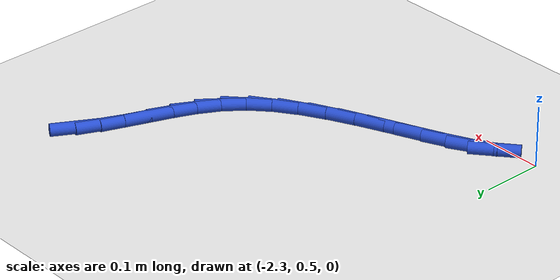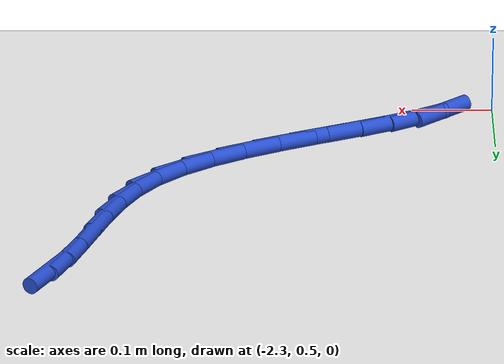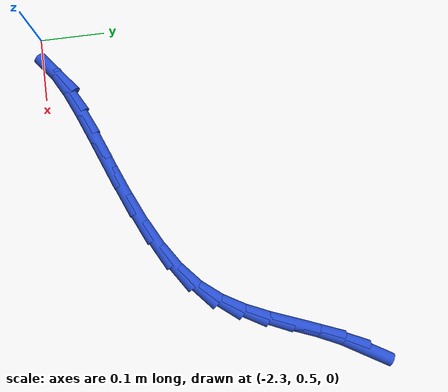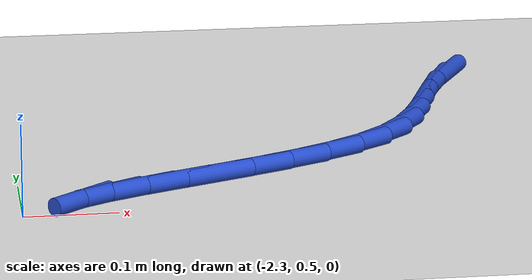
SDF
<sdf version="1.6">
 <world name="default">
  <model name="ground_plane">
   <static>1</static>
   <link name="link">
    <collision name="collision">
     <geometry><plane><normal>0 0 1</normal><size>100 100</size></plane></geometry>
     <surface><friction><ode><mu>100</mu><mu2>50</mu2></ode></friction></surface>
    </collision>
    <visual name="visual">
     <cast_shadows>0</cast_shadows>
     <geometry><plane><normal>0 0 1</normal><size>100 100</size></plane></geometry>
     <material>
      <script><uri>file://media/materials/scripts/gazebo.material</uri><name>Gazebo/WhiteGlow</name></script>
     </material>
    </visual>
   </link>
  </model>
  <model name="line">
   <link name="link_66">
    <pose>-1.7647057322354762 0.9405560377948695 0.01 0 1.57 1.0456950409945203</pose>
    <collision name="collision">
     <geometry><cylinder><radius>0.01</radius><length>0.08</length></cylinder></geometry>
    </collision>
    <visual name="visual">
     <material>
      <script><name>Gazebo/Blue</name><uri>file://media/materials/scripts/gazebo.material</uri></script>
     </material>
     <geometry><cylinder><radius>0.01</radius><length>0.08</length></cylinder></geometry>
    </visual>
   </link>
   <link name="link_67">
    <pose>-1.783759973115139 0.9076673440950094 0.01 0 1.57 1.1435086841225959</pose>
    <collision name="collision">
     <geometry><cylinder><radius>0.01</radius><length>0.08</length></cylinder></geometry>
    </collision>
    <visual name="visual">
     <material>
      <script><name>Gazebo/Blue</name><uri>file://media/materials/scripts/gazebo.material</uri></script>
     </material>
     <geometry><cylinder><radius>0.01</radius><length>0.08</length></cylinder></geometry>
    </visual>
   </link>
   <link name="link_68">
    <pose>-1.799448794484213 0.873212334070367 0.01 0 1.57 1.2024026393650187</pose>
    <collision name="collision">
     <geometry><cylinder><radius>0.01</radius><length>0.08</length></cylinder></geometry>
    </collision>
    <visual name="visual">
     <material>
      <script><name>Gazebo/Blue</name><uri>file://media/materials/scripts/gazebo.material</uri></script>
     </material>
     <geometry><cylinder><radius>0.01</radius><length>0.08</length></cylinder></geometry>
    </visual>
   </link>
   <link name="link_69">
    <pose>-1.8131085326556455 0.8378259100381336 0.01 0 1.57 1.207169072288135</pose>
    <collision name="collision">
     <geometry><cylinder><radius>0.01</radius><length>0.08</length></cylinder></geometry>
    </collision>
    <visual name="visual">
     <material>
      <script><name>Gazebo/Blue</name><uri>file://media/materials/scripts/gazebo.material</uri></script>
     </material>
     <geometry><cylinder><radius>0.01</radius><length>0.08</length></cylinder></geometry>
    </visual>
   </link>
   <link name="link_70">
    <pose>-1.8266172507014728 0.8023280018238768 0.01 0 1.57 1.1579852641284027</pose>
    <collision name="collision">
     <geometry><cylinder><radius>0.01</radius><length>0.08</length></cylinder></geometry>
    </collision>
    <visual name="visual">
     <material>
      <script><name>Gazebo/Blue</name><uri>file://media/materials/scripts/gazebo.material</uri></script>
     </material>
     <geometry><cylinder><radius>0.01</radius><length>0.08</length></cylinder></geometry>
    </visual>
   </link>
   <link name="link_71">
    <pose>-1.8418540876320169 0.7675389067413427 0.01 0 1.57 1.0553208269981007</pose>
    <collision name="collision">
     <geometry><cylinder><radius>0.01</radius><length>0.08</length></cylinder></geometry>
    </collision>
    <visual name="visual">
     <material>
      <script><name>Gazebo/Blue</name><uri>file://media/materials/scripts/gazebo.material</uri></script>
     </material>
     <geometry><cylinder><radius>0.01</radius><length>0.08</length></cylinder></geometry>
    </visual>
   </link>
   <link name="link_72">
    <pose>-1.8606981824575983 0.7342789221042764 0.01 0 1.57 0.9039553692297427</pose>
    <collision name="collision">
     <geometry><cylinder><radius>0.01</radius><length>0.08</length></cylinder></geometry>
    </collision>
    <visual name="visual">
     <material>
      <script><name>Gazebo/Blue</name><uri>file://media/materials/scripts/gazebo.material</uri></script>
     </material>
     <geometry><cylinder><radius>0.01</radius><length>0.08</length></cylinder></geometry>
    </visual>
   </link>
   <link name="link_73">
    <pose>-1.8850286741885383 0.703368345226424 0.01 0 1.57 0.7266078050478999</pose>
    <collision name="collision">
     <geometry><cylinder><radius>0.01</radius><length>0.08</length></cylinder></geometry>
    </collision>
    <visual name="visual">
     <material>
      <script><name>Gazebo/Blue</name><uri>file://media/materials/scripts/gazebo.material</uri></script>
     </material>
     <geometry><cylinder><radius>0.01</radius><length>0.08</length></cylinder></geometry>
    </visual>
   </link>
   <link name="link_74">
    <pose>-1.9163733441163313 0.6755083541652737 0.01 0 1.57 0.5861550663383689</pose>
    <collision name="collision">
     <geometry><cylinder><radius>0.01</radius><length>0.08</length></cylinder></geometry>
    </collision>
    <visual name="visual">
     <material>
      <script><name>Gazebo/Blue</name><uri>file://media/materials/scripts/gazebo.material</uri></script>
     </material>
     <geometry><cylinder><radius>0.01</radius><length>0.08</length></cylinder></geometry>
    </visual>
   </link>
   <link name="link_75">
    <pose>-1.953890599444236 0.6505968485413716 0.01 0 1.57 0.4911992792978934</pose>
    <collision name="collision">
     <geometry><cylinder><radius>0.01</radius><length>0.08</length></cylinder></geometry>
    </collision>
    <visual name="visual">
     <material>
      <script><name>Gazebo/Blue</name><uri>file://media/materials/scripts/gazebo.material</uri></script>
     </material>
     <geometry><cylinder><radius>0.01</radius><length>0.08</length></cylinder></geometry>
    </visual>
   </link>
   <link name="link_76">
    <pose>-1.9957597628150485 0.6281997932591431 0.01 0 1.57 0.42918376798071106</pose>
    <collision name="collision">
     <geometry><cylinder><radius>0.01</radius><length>0.08</length></cylinder></geometry>
    </collision>
    <visual name="visual">
     <material>
      <script><name>Gazebo/Blue</name><uri>file://media/materials/scripts/gazebo.material</uri></script>
     </material>
     <geometry><cylinder><radius>0.01</radius><length>0.08</length></cylinder></geometry>
    </visual>
   </link>
   <link name="link_77">
    <pose>-2.0401570604176484 0.6078821034459122 0.01 0 1.57 0.3925418186018263</pose>
    <collision name="collision">
     <geometry><cylinder><radius>0.01</radius><length>0.08</length></cylinder></geometry>
    </collision>
    <visual name="visual">
     <material>
      <script><name>Gazebo/Blue</name><uri>file://media/materials/scripts/gazebo.material</uri></script>
     </material>
     <geometry><cylinder><radius>0.01</radius><length>0.08</length></cylinder></geometry>
    </visual>
   </link>
   <link name="link_78">
    <pose>-2.0852587184409135 0.5892086942290019 0.01 0 1.57 0.3779815720762842</pose>
    <collision name="collision">
     <geometry><cylinder><radius>0.01</radius><length>0.08</length></cylinder></geometry>
    </collision>
    <visual name="visual">
     <material>
      <script><name>Gazebo/Blue</name><uri>file://media/materials/scripts/gazebo.material</uri></script>
     </material>
     <geometry><cylinder><radius>0.01</radius><length>0.08</length></cylinder></geometry>
    </visual>
   </link>
   <link name="link_79">
    <pose>-2.129240963073722 0.5717444807357361 0.01 0 1.57 0.38625878360357846</pose>
    <collision name="collision">
     <geometry><cylinder><radius>0.01</radius><length>0.08</length></cylinder></geometry>
    </collision>
    <visual name="visual">
     <material>
      <script><name>Gazebo/Blue</name><uri>file://media/materials/scripts/gazebo.material</uri></script>
     </material>
     <geometry><cylinder><radius>0.01</radius><length>0.08</length></cylinder></geometry>
    </visual>
   </link>
   <link name="link_80">
    <pose>-2.170280020504952 0.555054378093438 0.01 0 1.57 0.4235101997624132</pose>
    <collision name="collision">
     <geometry><cylinder><radius>0.01</radius><length>0.08</length></cylinder></geometry>
    </collision>
    <visual name="visual">
     <material>
      <script><name>Gazebo/Blue</name><uri>file://media/materials/scripts/gazebo.material</uri></script>
     </material>
     <geometry><cylinder><radius>0.01</radius><length>0.08</length></cylinder></geometry>
    </visual>
   </link>
   <link name="link_81">
    <pose>-2.206552116923481 0.5387033014294315 0.01 0 1.57 0.5060034187823664</pose>
    <collision name="collision">
     <geometry><cylinder><radius>0.01</radius><length>0.08</length></cylinder></geometry>
    </collision>
    <visual name="visual">
     <material>
      <script><name>Gazebo/Blue</name><uri>file://media/materials/scripts/gazebo.material</uri></script>
     </material>
     <geometry><cylinder><radius>0.01</radius><length>0.08</length></cylinder></geometry>
    </visual>
   </link>
   <link name="link_82">
    <pose>-2.236233478518188 0.5222561658710398 0.01 0 1.57 0.673730797050666</pose>
    <collision name="collision">
     <geometry><cylinder><radius>0.01</radius><length>0.08</length></cylinder></geometry>
    </collision>
    <visual name="visual">
     <material>
      <script><name>Gazebo/Blue</name><uri>file://media/materials/scripts/gazebo.material</uri></script>
     </material>
     <geometry><cylinder><radius>0.01</radius><length>0.08</length></cylinder></geometry>
    </visual>
   </link>
  </model>
 </world>
</sdf>
